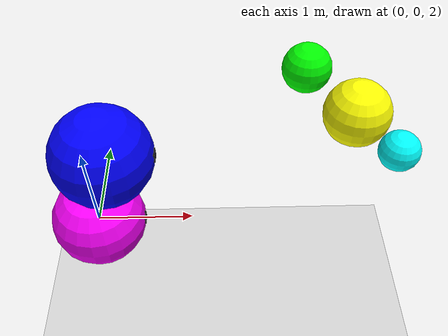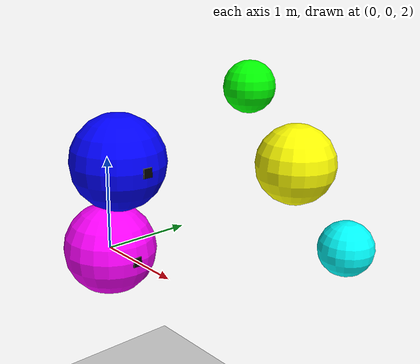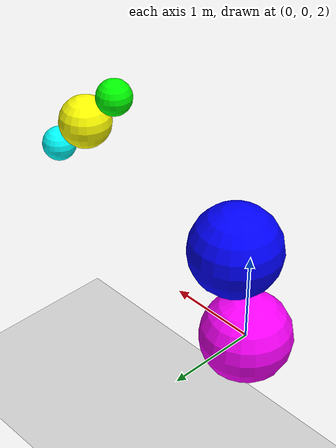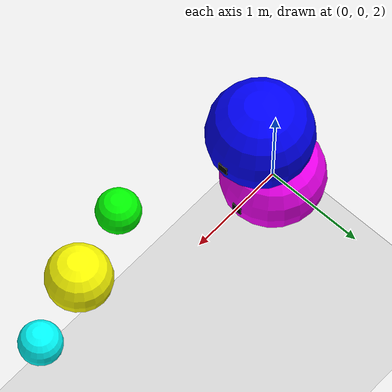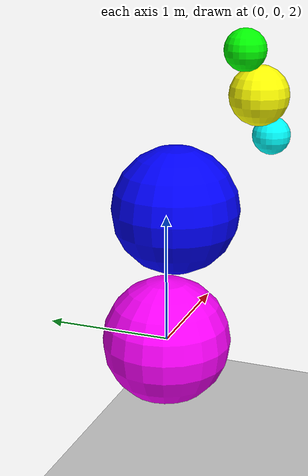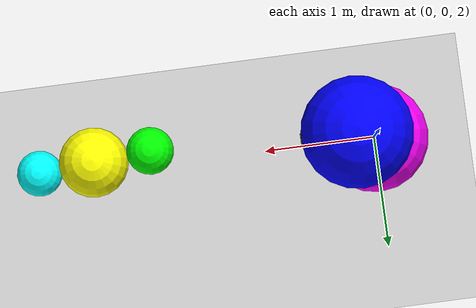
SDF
<?xml version="1.0" ?>
<sdf version="1.11">
  <world name="genesis_world">

    <gz:policies>
      <include_server_config_plugins>false</include_server_config_plugins>
    </gz:policies>

    <plugin filename="gz-sim-python-system-loader-system" name="gz::sim::systems::PythonSystemLoader">
      <module_name>genesis_physics</module_name>
      <backend>cpu</backend>
    </plugin>
    <plugin
      filename="gz-sim-user-commands-system"
      name="gz::sim::systems::UserCommands">
    </plugin>
    <plugin
      filename="gz-sim-scene-broadcaster-system"
      name="gz::sim::systems::SceneBroadcaster">
    </plugin>

    <scene>
      <ambient>1.0 1.0 1.0</ambient>
      <background>0.8 0.8 0.8</background>
    </scene>

    <light type="directional" name="sun">
      <cast_shadows>true</cast_shadows>
      <pose>0 0 10 0 0 0</pose>
      <diffuse>0.8 0.8 0.8 1</diffuse>
      <specular>0.2 0.2 0.2 1</specular>
      <attenuation>
        <range>1000</range>
        <constant>0.9</constant>
        <linear>0.01</linear>
        <quadratic>0.001</quadratic>
      </attenuation>
      <direction>-0.5 0.1 -0.9</direction>
    </light>

    <model name="ground_plane">
      <static>true</static>
      <link name="link">
        <collision name="collision">
          <geometry>
            <plane>
              <normal>0 0 1</normal>
              <size>100 100</size>
            </plane>
          </geometry>
        </collision>
        <visual name="visual">
          <geometry>
            <plane>
              <normal>0 0 1</normal>
              <size>100 100</size>
            </plane>
          </geometry>
          <material>
            <ambient>0.8 0.8 0.8 1</ambient>
            <diffuse>0.8 0.8 0.8 1</diffuse>
            <specular>0.8 0.8 0.8 1</specular>
          </material>
        </visual>
      </link>
    </model>

    <!-- Colliding Spheres -->
    <model name="sphere1">
      <pose>0 0 2 0 0 0</pose>
      <link name="sphere1_link">
        <collision name="sphere1_collision">
          <geometry>
            <sphere>
              <radius>0.5</radius>
            </sphere>
          </geometry>
        </collision>
        <visual name="sphere1_visual">
          <geometry>
            <sphere>
              <radius>0.5</radius>
            </sphere>
          </geometry>
          <material>
            <ambient>1 0 1 1</ambient>
            <diffuse>1 0 1 1</diffuse>
            <specular>1 0 1 1</specular>
          </material>
        </visual>
        <visual name="sphere1_feature">
          <pose>0.45 0 0 0 0 0</pose>
          <geometry>
            <box>
              <size>0.1 0.1 0.1</size>
            </box>
          </geometry>
          <material>
            <ambient>0 0 0 1</ambient>
            <diffuse>0 0 0 1</diffuse>
            <specular>0 0 0 1</specular>
          </material>
        </visual>
      </link>
    </model>

    <model name="sphere2">
      <pose>0.2 0 3 0 0 0</pose>
      <link name="sphere2_link">
        <collision name="sphere2_collision">
          <geometry>
            <sphere>
              <radius>0.5</radius>
            </sphere>
          </geometry>
        </collision>
        <visual name="sphere2_visual">
          <geometry>
            <sphere>
              <radius>0.5</radius>
            </sphere>
          </geometry>
          <material>
            <ambient>0 0 1 1</ambient>
            <diffuse>0 0 1 1</diffuse>
            <specular>0 0 1 1</specular>
          </material>
        </visual>
        <visual name="sphere2_feature">
          <pose>0.45 0 0 0 0 0</pose>
          <geometry>
            <box>
              <size>0.1 0.1 0.1</size>
            </box>
          </geometry>
          <material>
            <ambient>0 0 0 1</ambient>
            <diffuse>0 0 0 1</diffuse>
            <specular>0 0 0 1</specular>
          </material>
        </visual>
      </link>
    </model>

    <!-- Pendulum with Fixed Extension -->
    <model name="pendulum">
      <pose>0 0 0 0 0 0</pose>
      <link name="base_link">
        <pose>2 0 4 0 0 0</pose>
        <collision name="base_collision">
          <geometry>
            <sphere>
              <radius>0.2</radius>
            </sphere>
          </geometry>
        </collision>
        <visual name="base_visual">
          <geometry>
            <sphere>
              <radius>0.2</radius>
            </sphere>
          </geometry>
          <material>
            <ambient>0 1 0 1</ambient>
            <diffuse>0 1 0 1</diffuse>
            <specular>0 1 0 1</specular>
          </material>
        </visual>
      </link>

      <link name="bob_link">
        <pose>2.5 0 3.5 0 0 0</pose>
        <collision name="bob_collision">
          <geometry>
            <sphere>
              <radius>0.3</radius>
            </sphere>
          </geometry>
        </collision>
        <visual name="bob_visual">
          <geometry>
            <sphere>
              <radius>0.3</radius>
            </sphere>
          </geometry>
          <material>
            <ambient>1 1 0 1</ambient>
            <diffuse>1 1 0 1</diffuse>
            <specular>1 1 0 1</specular>
          </material>
        </visual>
      </link>

      <link name="bob2_link">
        <pose>3.0 0 3.0 0 0 0</pose> <!-- Further offset -->
        <collision name="bob2_collision">
          <geometry>
            <sphere>
              <radius>0.2</radius>
            </sphere>
          </geometry>
        </collision>
        <visual name="bob2_visual">
          <geometry>
            <sphere>
              <radius>0.2</radius>
            </sphere>
          </geometry>
          <material>
            <ambient>0 1 1 1</ambient>
            <diffuse>0 1 1 1</diffuse>
            <specular>0 1 1 1</specular>
          </material>
        </visual>
      </link>

      <joint name="anchor" type="fixed">
        <parent>world</parent>
        <child>base_link</child>
      </joint>

      <joint name="pendulum_joint" type="revolute">
        <parent>base_link</parent>
        <child>bob_link</child>
        <axis>
          <xyz>0 1 0</xyz>
        </axis>
      </joint>

      <joint name="fixed_joint" type="fixed">
        <parent>bob_link</parent>
        <child>bob2_link</child>
      </joint>
    </model>

  </world>
</sdf>
